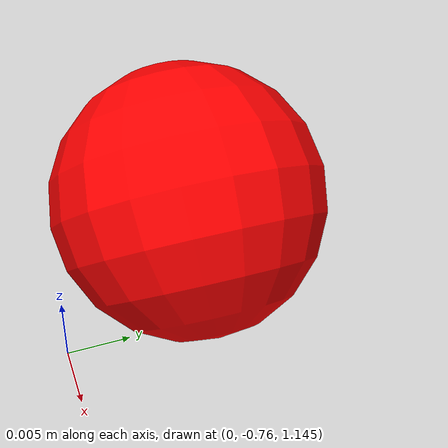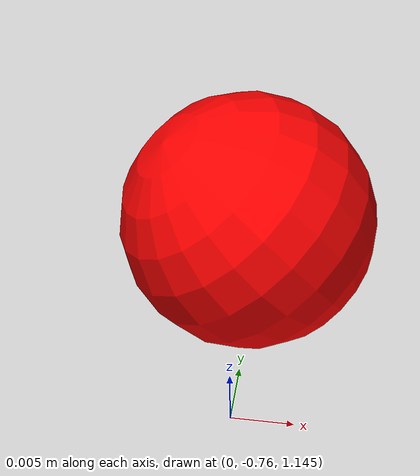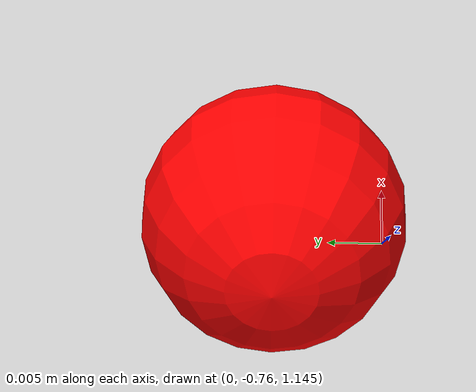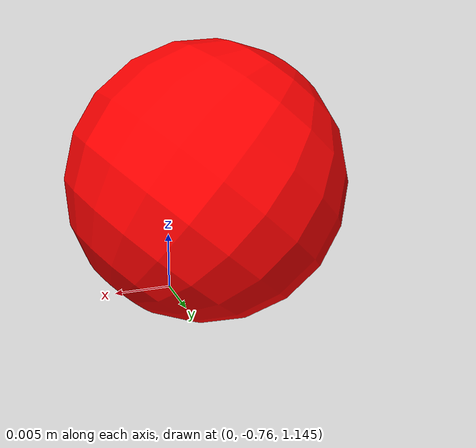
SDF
<?xml version="1.0" ?>
<sdf version="1.6">
  <model name="point_marker">
    <static>true</static> <!-- model không bị vật lý chi phối -->
    <link name="link">
      <visual name="visual">
        <geometry>
          <sphere>
            <radius>0.01</radius> <!-- bán kính rất nhỏ -->
          </sphere>
        </geometry>
        <material>
          <ambient>1 0 0 1</ambient> <!-- đỏ -->
          <diffuse>1 0 0 1</diffuse>
        </material>
      </visual>
      <pose>6.3951452373145479e-06 -0.7500012646474512 1.1569985871933826 5.1933531133806792e-06 -0.70710542084780681 2.61495846620968e-06 </pose> <!-- tọa độ x y z -->
    </link>
  </model>
</sdf>
